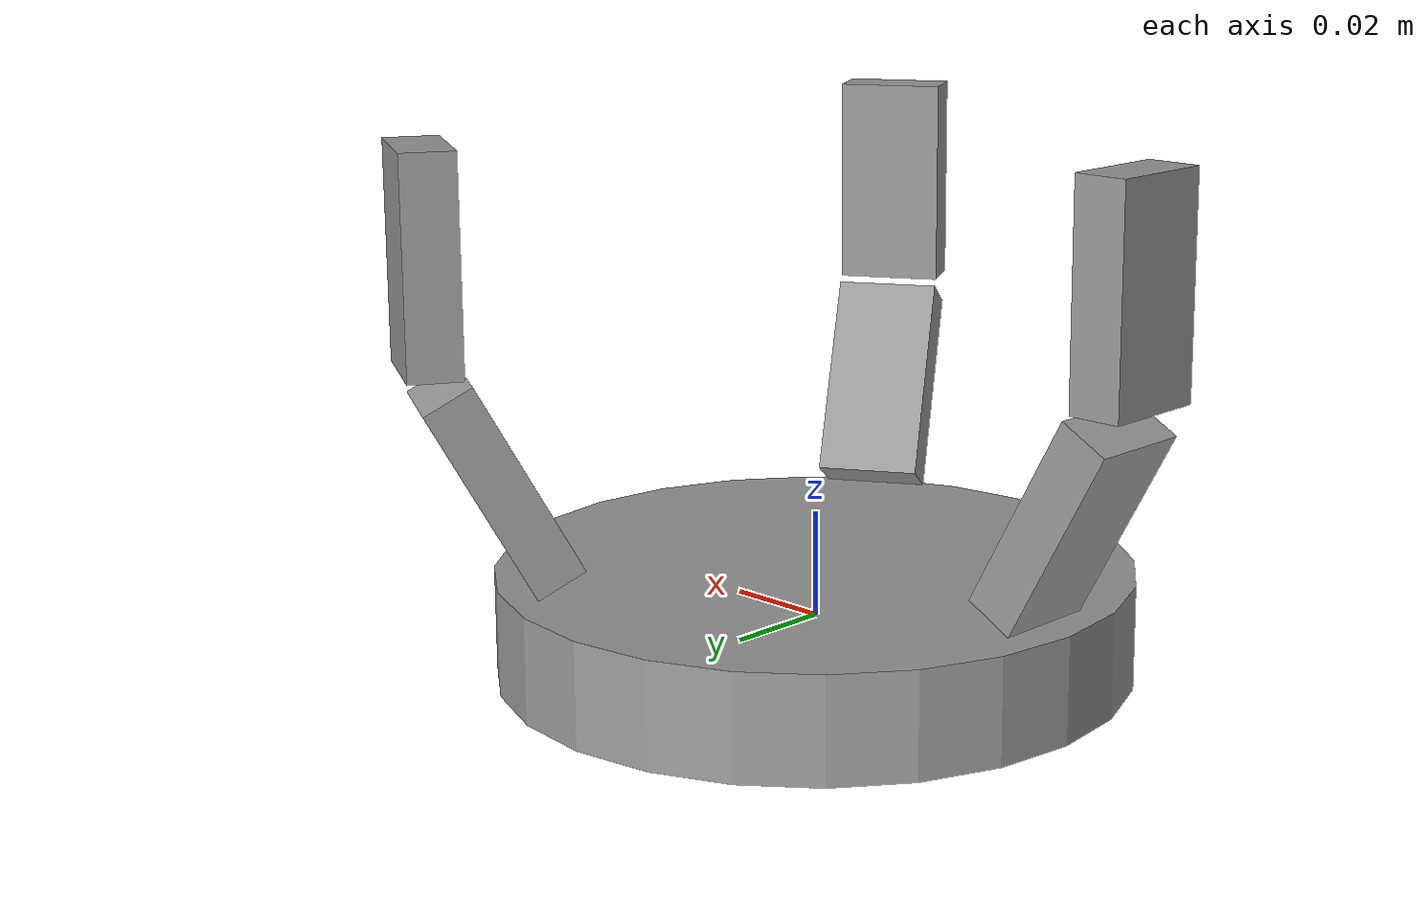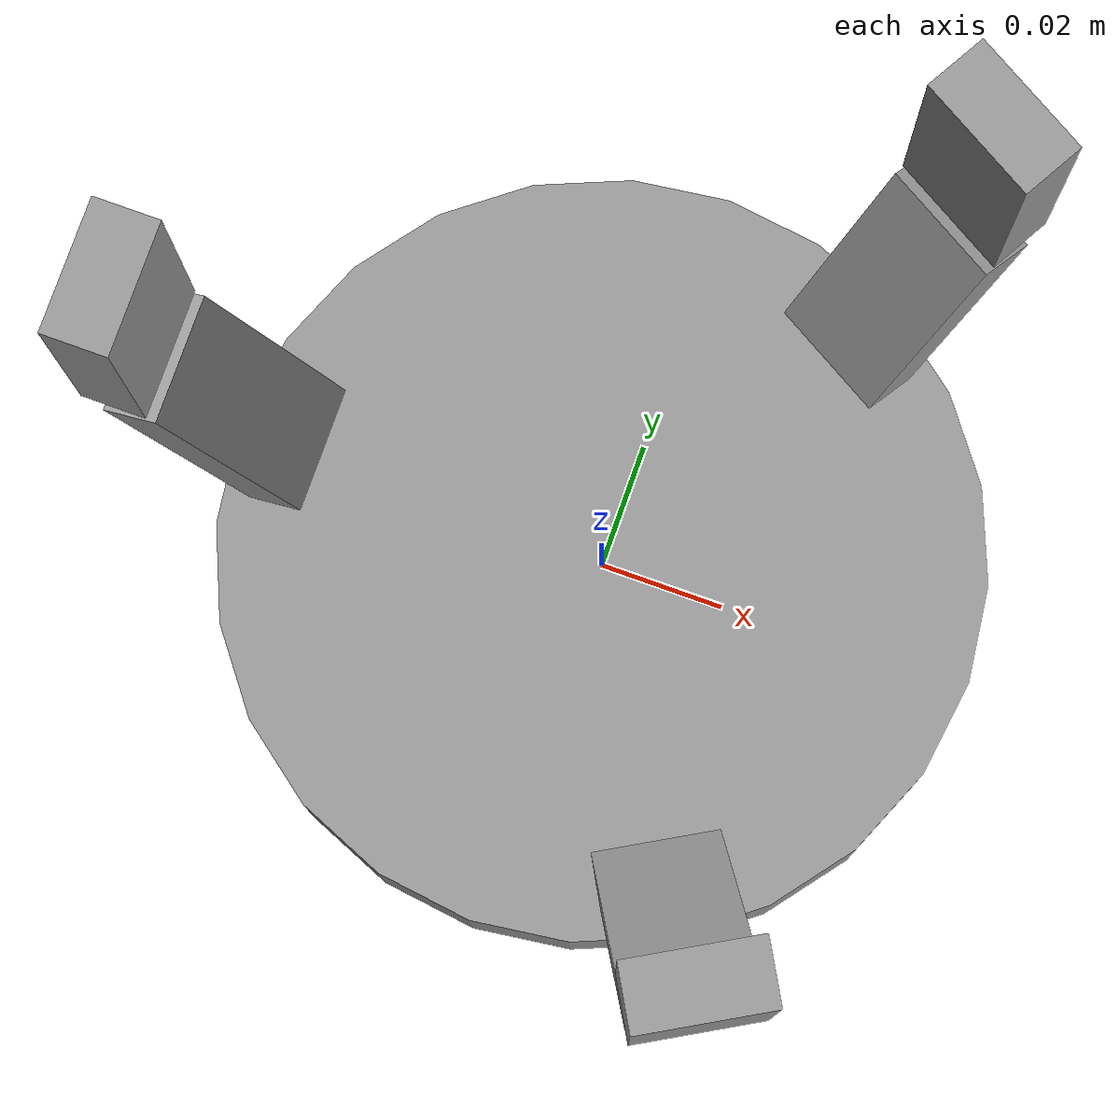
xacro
<?xml version="1.0"?>

<robot  xmlns:xacro="http://www.ros.org/wiki/xacro">
    <!-- XACRO definitions -->
    <xacro:property name="claw_base_length" value="0.02"/>
    <xacro:property name="claw_base_radius" value="0.06"/>

    <xacro:property name="claw_finger_length" value="0.01"/>
    <xacro:property name="claw_finger_width" value="0.02"/>
    <xacro:property name="claw_finger_height" value="0.04"/>

    <xacro:property name="claw_finger_offset" value="0.05"/>

    <!-- XACRO FOR CLAWS -->
    <xacro:macro name="claw_finger" params="name">

        <!-- FINGER LINK 1 -->
        <link name="${name}_claw_finger">
            <visual>
                <origin xyz="0 0.0 ${claw_finger_height/2.0}" rpy="0.0 0.0 0.0"/>
                <geometry>
                    <box size="${claw_finger_length} ${claw_finger_width} ${claw_finger_height}"/>
                </geometry>
                <material name="grey"/>
            </visual>

            <collision>
                <origin xyz="0 0.0 ${claw_finger_height/2.0}" rpy="0.0 0.0 0.0"/>
                <geometry>
                    <box size="${claw_finger_length} ${claw_finger_width} ${claw_finger_height}"/>
                </geometry>
            </collision>

            <xacro:box_inertia m="0.2" x="${claw_finger_length}" y="${claw_finger_width}" z="${claw_finger_height}" o_xyz="0 0 ${claw_finger_height/2.0}" o_rpy="0 0 0"/>

        </link>
        <!-- FINGER LINK 2 -->
        <link name="gripper_claw_${name}">
            <visual>
                <origin xyz="0.0 0.0 ${claw_finger_height/2.0}" rpy="0.0 0.0 0.0"/>
                <geometry>
                    <box size="${claw_finger_length} ${claw_finger_width} ${claw_finger_height}"/>
                </geometry>
                <material name="grey"/>

            </visual>

            <collision>
                <origin xyz="0.0 0.0 ${claw_finger_height/2.0}" rpy="0.0 0.0 0.0"/>
                <geometry>
                    <box size="${claw_finger_length} ${claw_finger_width} ${claw_finger_height}"/>
                </geometry>
            </collision>

            <xacro:box_inertia m="0.1" x="${claw_finger_length}" y="${claw_finger_width}" z="${claw_finger_height}" o_xyz="0 0 ${claw_finger_height/2.0}" o_rpy="0 0 0"/>

        </link>

        <joint name="finger_claw_${name}" type="fixed">
            <origin xyz="0 0 ${claw_finger_height*1.1}" rpy="0 0.5 0"/>
            <parent link="${name}_claw_finger"/>
            <child link="gripper_claw_${name}"/>
        </joint>
    </xacro:macro>

    <link name="claw_base">
        <xacro:box_inertia m="3.0" x="${2*claw_base_radius}"  y="${2*claw_base_radius}"  z="${claw_base_length}"  o_xyz="0 0 0" o_rpy="0 0 0"/>
        <visual >
            <origin xyz="0.0 0.0 0.0" rpy="0.0 0.0 0.0"/>
            <geometry>
                <cylinder radius="${claw_base_radius}" length="${claw_base_length}"/>
            </geometry>
            <material name="grey"/>
        </visual>
        <collision>
            <origin xyz="0.0 0.0 0.0" rpy="0.0 0.0 0.0"/>
            <geometry>
                <box size="${2*claw_base_radius} ${2*claw_base_radius} ${claw_base_length}"/>
            </geometry>
        </collision>
    </link>

    <xacro:claw_finger name="one"/>
    <xacro:claw_finger name="two"/>
    <xacro:claw_finger name="three"/>

    <joint name="claw_base_finger_one" type="revolute">
        <origin xyz="-${claw_finger_offset} 0.0 ${claw_base_length/1.5}" rpy="0.0 -0.5  0.0"/>
        <parent link="claw_base"/>
        <child link="one_claw_finger"/>
        <axis xyz="0.0 1.0 0.0"/>
        <limit lower="0" upper="0.75" effort="10.0" velocity="10.0"/>

    </joint>

    <joint name="claw_base_finger_two" type="revolute">
        <origin xyz="${claw_finger_offset*0.5} ${0.866*claw_finger_offset} ${claw_base_length/1.5}" rpy="0.0  -0.5 -2.09"/>
        <parent link="claw_base"/>
        <child link="two_claw_finger"/>
        <axis xyz="0.0 1.0 0.0"/>
        <limit lower="0.0" upper="1.2" effort="10.0" velocity="10.0"/>
        <mimic joint="claw_base_finger_one" multiplier="1.0"/>

    </joint>

    <joint name="claw_base_finger_three" type="revolute">
        <origin xyz="${claw_finger_offset*0.5} ${-0.866*claw_finger_offset} ${claw_base_length/1.5}" rpy="0.0 -0.5 2.09"/>
        <parent link="claw_base"/>
        <child link="three_claw_finger"/>
        <axis xyz="0.0 1.0 0.0"/>
        <limit lower="0.0" upper="1.2" effort="10.0" velocity="10.0"/>
        <mimic joint="claw_base_finger_one" multiplier="1.0"/>

    </joint>

</robot>
